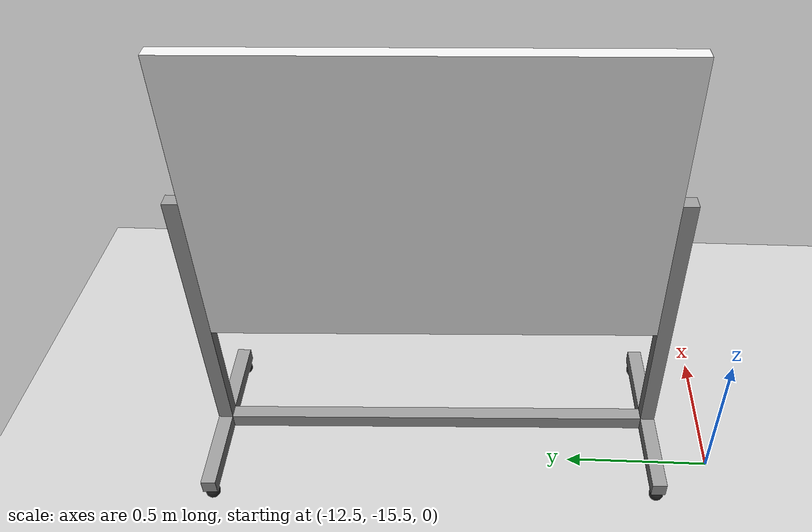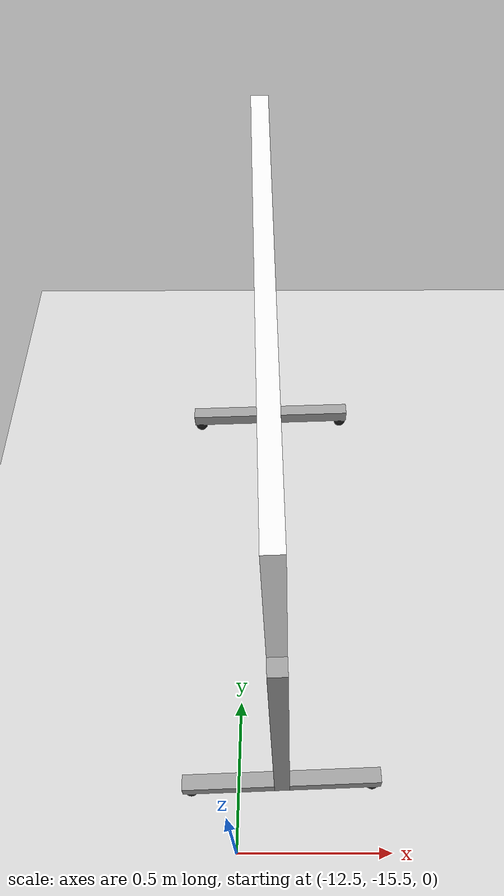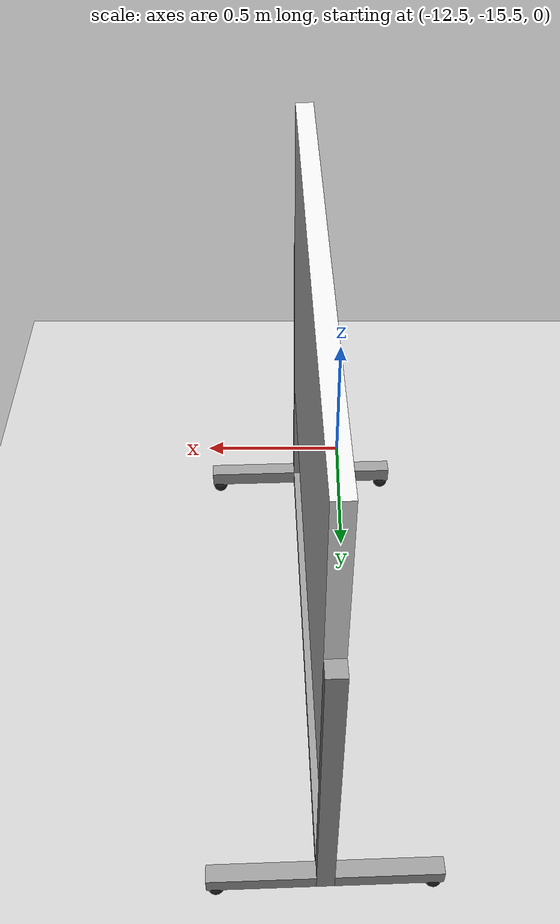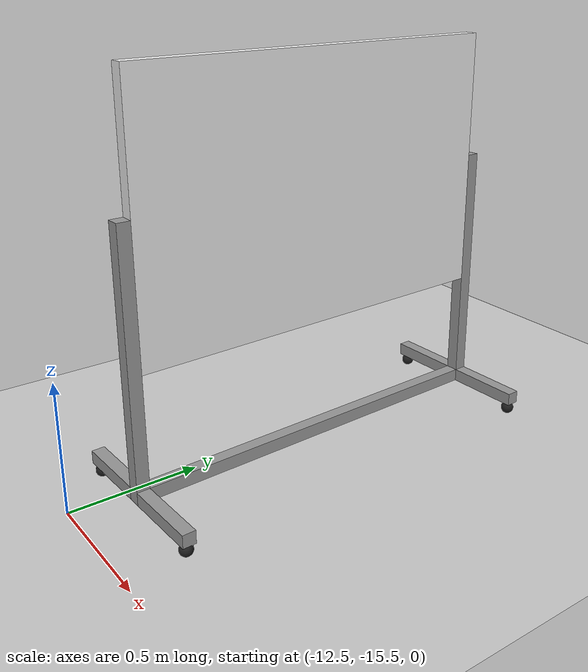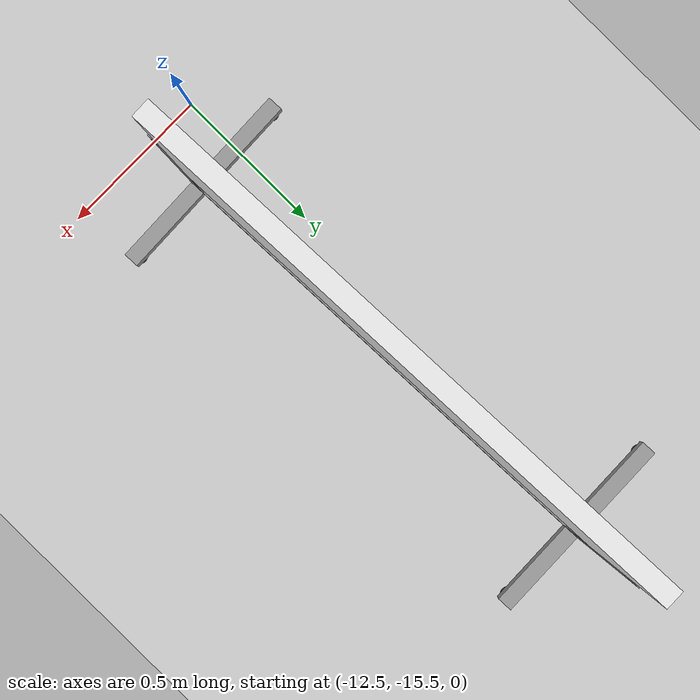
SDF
<sdf version="1.6">
 <world name="default">
  <model name="ground_plane">
   <static>1</static>
   <link name="link">
    <collision name="collision">
     <geometry><plane><normal>0 0 1</normal><size>100 100</size></plane></geometry>
     <surface><friction><ode><mu>100</mu><mu2>50</mu2></ode></friction></surface>
    </collision>
    <visual name="visual">
     <cast_shadows>0</cast_shadows>
     <geometry><plane><normal>0 0 1</normal><size>100 100</size></plane></geometry>
     <material>
      <script><uri>file://media/materials/scripts/gazebo.material</uri><name>Gazebo/Grey</name></script>
     </material>
    </visual>
   </link>
  </model>
  <model name="whiteboard_clone_clone">
   <link name="link_0">
    <pose>0 0 1.09583 0 -0 0</pose>
    <inertial>
     <mass>1</mass>
     <inertia>
      <ixx>0.166667</ixx>
      <ixy>0</ixy>
      <ixz>0</ixz>
      <iyy>0.166667</iyy>
      <iyz>0</iyz>
      <izz>0.166667</izz>
     </inertia>
    </inertial>
    <visual name="visual">
     <geometry><box><size>0.05 1.5 1</size></box></geometry>
     <material>
      <lighting>1</lighting>
      <script><uri>file://media/materials/scripts/gazebo.material</uri><name>Gazebo/White</name></script>
      <shader type="vertex"><normal_map>__default__</normal_map></shader>
     </material>
    </visual>
    <collision name="collision">
     <geometry><box><size>0.05 1.5 1</size></box></geometry>
     <surface>
      <friction>
       <ode><mu>1</mu><mu2>1</mu2><fdir1>0 0 0</fdir1><slip1>0</slip1><slip2>0</slip2></ode>
       <torsional>
        <coefficient>1</coefficient>
        <patch_radius>0</patch_radius>
        <surface_radius>0</surface_radius>
        <use_patch_radius>1</use_patch_radius>
        <ode><slip>0</slip></ode>
       </torsional>
      </friction>
      <bounce><restitution_coefficient>0</restitution_coefficient><threshold>1e+06</threshold></bounce>
      <contact>
       <collide_without_contact>0</collide_without_contact>
       <collide_without_contact_bitmask>1</collide_without_contact_bitmask>
       <collide_bitmask>1</collide_bitmask>
       <ode>
        <soft_cfm>0</soft_cfm>
        <soft_erp>0.2</soft_erp>
        <kp>1e+13</kp>
        <kd>1</kd>
        <max_vel>0.01</max_vel>
        <min_depth>0</min_depth>
       </ode>
       <bullet>
        <split_impulse>1</split_impulse>
        <split_impulse_penetration_threshold>-0.01</split_impulse_penetration_threshold>
        <soft_cfm>0</soft_cfm>
        <soft_erp>0.2</soft_erp>
        <kp>1e+13</kp>
        <kd>1</kd>
       </bullet>
      </contact>
     </surface>
    </collision>
   </link>
   <link name="link_1">
    <pose>0 0 0.145833 0 -0 0</pose>
    <inertial>
     <mass>1</mass>
     <inertia>
      <ixx>0.166667</ixx>
      <ixy>0</ixy>
      <ixz>0</ixz>
      <iyy>0.166667</iyy>
      <iyz>0</iyz>
      <izz>0.166667</izz>
     </inertia>
    </inertial>
    <visual name="visual">
     <geometry><box><size>0.05 1.5 0.05</size></box></geometry>
     <material>
      <lighting>1</lighting>
      <script><uri>file://media/materials/scripts/gazebo.material</uri><name>Gazebo/Grey</name></script>
      <ambient>0.3 0.3 0.3 1</ambient>
      <diffuse>0.7 0.7 0.7 1</diffuse>
      <specular>0.01 0.01 0.01 1</specular>
      <emissive>0 0 0 1</emissive>
      <shader type="vertex"><normal_map>__default__</normal_map></shader>
     </material>
    </visual>
    <collision name="collision">
     <geometry><box><size>0.05 1.5 0.05</size></box></geometry>
     <surface>
      <friction>
       <ode><mu>1</mu><mu2>1</mu2><fdir1>0 0 0</fdir1><slip1>0</slip1><slip2>0</slip2></ode>
       <torsional>
        <coefficient>1</coefficient>
        <patch_radius>0</patch_radius>
        <surface_radius>0</surface_radius>
        <use_patch_radius>1</use_patch_radius>
        <ode><slip>0</slip></ode>
       </torsional>
      </friction>
      <bounce><restitution_coefficient>0</restitution_coefficient><threshold>1e+06</threshold></bounce>
      <contact>
       <collide_without_contact>0</collide_without_contact>
       <collide_without_contact_bitmask>1</collide_without_contact_bitmask>
       <collide_bitmask>1</collide_bitmask>
       <ode>
        <soft_cfm>0</soft_cfm>
        <soft_erp>0.2</soft_erp>
        <kp>1e+13</kp>
        <kd>1</kd>
        <max_vel>0.01</max_vel>
        <min_depth>0</min_depth>
       </ode>
       <bullet>
        <split_impulse>1</split_impulse>
        <split_impulse_penetration_threshold>-0.01</split_impulse_penetration_threshold>
        <soft_cfm>0</soft_cfm>
        <soft_erp>0.2</soft_erp>
        <kp>1e+13</kp>
        <kd>1</kd>
       </bullet>
      </contact>
     </surface>
    </collision>
   </link>
   <link name="link_2">
    <pose>-0.175 -0.775 0.145833 0 -0 0</pose>
    <inertial>
     <mass>1</mass>
     <inertia>
      <ixx>0.166667</ixx>
      <ixy>0</ixy>
      <ixz>0</ixz>
      <iyy>0.166667</iyy>
      <iyz>0</iyz>
      <izz>0.166667</izz>
     </inertia>
    </inertial>
    <visual name="visual">
     <geometry><box><size>0.3 0.05 0.05</size></box></geometry>
     <material>
      <lighting>1</lighting>
      <script><uri>file://media/materials/scripts/gazebo.material</uri><name>Gazebo/Grey</name></script>
      <ambient>0.3 0.3 0.3 1</ambient>
      <diffuse>0.7 0.7 0.7 1</diffuse>
      <specular>0.01 0.01 0.01 1</specular>
      <emissive>0 0 0 1</emissive>
      <shader type="vertex"><normal_map>__default__</normal_map></shader>
     </material>
    </visual>
    <collision name="collision">
     <geometry><box><size>0.3 0.05 0.05</size></box></geometry>
     <surface>
      <friction>
       <ode><mu>1</mu><mu2>1</mu2><fdir1>0 0 0</fdir1><slip1>0</slip1><slip2>0</slip2></ode>
       <torsional>
        <coefficient>1</coefficient>
        <patch_radius>0</patch_radius>
        <surface_radius>0</surface_radius>
        <use_patch_radius>1</use_patch_radius>
        <ode><slip>0</slip></ode>
       </torsional>
      </friction>
      <bounce><restitution_coefficient>0</restitution_coefficient><threshold>1e+06</threshold></bounce>
      <contact>
       <collide_without_contact>0</collide_without_contact>
       <collide_without_contact_bitmask>1</collide_without_contact_bitmask>
       <collide_bitmask>1</collide_bitmask>
       <ode>
        <soft_cfm>0</soft_cfm>
        <soft_erp>0.2</soft_erp>
        <kp>1e+13</kp>
        <kd>1</kd>
        <max_vel>0.01</max_vel>
        <min_depth>0</min_depth>
       </ode>
       <bullet>
        <split_impulse>1</split_impulse>
        <split_impulse_penetration_threshold>-0.01</split_impulse_penetration_threshold>
        <soft_cfm>0</soft_cfm>
        <soft_erp>0.2</soft_erp>
        <kp>1e+13</kp>
        <kd>1</kd>
       </bullet>
      </contact>
     </surface>
    </collision>
   </link>
   <link name="link_2_clone">
    <pose>0.175 0.775 0.145833 0 -0 0</pose>
    <inertial>
     <mass>1</mass>
     <inertia>
      <ixx>0.166667</ixx>
      <ixy>0</ixy>
      <ixz>0</ixz>
      <iyy>0.166667</iyy>
      <iyz>0</iyz>
      <izz>0.166667</izz>
     </inertia>
    </inertial>
    <visual name="visual">
     <geometry><box><size>0.3 0.05 0.05</size></box></geometry>
     <material>
      <lighting>1</lighting>
      <script><uri>file://media/materials/scripts/gazebo.material</uri><name>Gazebo/Grey</name></script>
      <ambient>0.3 0.3 0.3 1</ambient>
      <diffuse>0.7 0.7 0.7 1</diffuse>
      <specular>0.01 0.01 0.01 1</specular>
      <emissive>0 0 0 1</emissive>
      <shader type="vertex"><normal_map>__default__</normal_map></shader>
     </material>
    </visual>
    <collision name="collision">
     <geometry><box><size>0.3 0.05 0.05</size></box></geometry>
     <surface>
      <friction>
       <ode><mu>1</mu><mu2>1</mu2><fdir1>0 0 0</fdir1><slip1>0</slip1><slip2>0</slip2></ode>
       <torsional>
        <coefficient>1</coefficient>
        <patch_radius>0</patch_radius>
        <surface_radius>0</surface_radius>
        <use_patch_radius>1</use_patch_radius>
        <ode><slip>0</slip></ode>
       </torsional>
      </friction>
      <bounce><restitution_coefficient>0</restitution_coefficient><threshold>1e+06</threshold></bounce>
      <contact>
       <collide_without_contact>0</collide_without_contact>
       <collide_without_contact_bitmask>1</collide_without_contact_bitmask>
       <collide_bitmask>1</collide_bitmask>
       <ode>
        <soft_cfm>0</soft_cfm>
        <soft_erp>0.2</soft_erp>
        <kp>1e+13</kp>
        <kd>1</kd>
        <max_vel>0.01</max_vel>
        <min_depth>0</min_depth>
       </ode>
       <bullet>
        <split_impulse>1</split_impulse>
        <split_impulse_penetration_threshold>-0.01</split_impulse_penetration_threshold>
        <soft_cfm>0</soft_cfm>
        <soft_erp>0.2</soft_erp>
        <kp>1e+13</kp>
        <kd>1</kd>
       </bullet>
      </contact>
     </surface>
    </collision>
   </link>
   <link name="link_2_clone_clone">
    <pose>0.175 -0.775 0.145833 0 -0 0</pose>
    <inertial>
     <mass>1</mass>
     <inertia>
      <ixx>0.166667</ixx>
      <ixy>0</ixy>
      <ixz>0</ixz>
      <iyy>0.166667</iyy>
      <iyz>0</iyz>
      <izz>0.166667</izz>
     </inertia>
    </inertial>
    <visual name="visual">
     <geometry><box><size>0.3 0.05 0.05</size></box></geometry>
     <material>
      <lighting>1</lighting>
      <script><uri>file://media/materials/scripts/gazebo.material</uri><name>Gazebo/Grey</name></script>
      <ambient>0.3 0.3 0.3 1</ambient>
      <diffuse>0.7 0.7 0.7 1</diffuse>
      <specular>0.01 0.01 0.01 1</specular>
      <emissive>0 0 0 1</emissive>
      <shader type="vertex"><normal_map>__default__</normal_map></shader>
     </material>
    </visual>
    <collision name="collision">
     <geometry><box><size>0.3 0.05 0.05</size></box></geometry>
     <surface>
      <friction>
       <ode><mu>1</mu><mu2>1</mu2><fdir1>0 0 0</fdir1><slip1>0</slip1><slip2>0</slip2></ode>
       <torsional>
        <coefficient>1</coefficient>
        <patch_radius>0</patch_radius>
        <surface_radius>0</surface_radius>
        <use_patch_radius>1</use_patch_radius>
        <ode><slip>0</slip></ode>
       </torsional>
      </friction>
      <bounce><restitution_coefficient>0</restitution_coefficient><threshold>1e+06</threshold></bounce>
      <contact>
       <collide_without_contact>0</collide_without_contact>
       <collide_without_contact_bitmask>1</collide_without_contact_bitmask>
       <collide_bitmask>1</collide_bitmask>
       <ode>
        <soft_cfm>0</soft_cfm>
        <soft_erp>0.2</soft_erp>
        <kp>1e+13</kp>
        <kd>1</kd>
        <max_vel>0.01</max_vel>
        <min_depth>0</min_depth>
       </ode>
       <bullet>
        <split_impulse>1</split_impulse>
        <split_impulse_penetration_threshold>-0.01</split_impulse_penetration_threshold>
        <soft_cfm>0</soft_cfm>
        <soft_erp>0.2</soft_erp>
        <kp>1e+13</kp>
        <kd>1</kd>
       </bullet>
      </contact>
     </surface>
    </collision>
   </link>
   <link name="link_2_clone_clone_clone">
    <pose>-0.175 0.775 0.145833 0 -0 0</pose>
    <inertial>
     <mass>1</mass>
     <inertia>
      <ixx>0.166667</ixx>
      <ixy>0</ixy>
      <ixz>0</ixz>
      <iyy>0.166667</iyy>
      <iyz>0</iyz>
      <izz>0.166667</izz>
     </inertia>
    </inertial>
    <visual name="visual">
     <geometry><box><size>0.3 0.05 0.05</size></box></geometry>
     <material>
      <lighting>1</lighting>
      <script><uri>file://media/materials/scripts/gazebo.material</uri><name>Gazebo/Grey</name></script>
      <ambient>0.3 0.3 0.3 1</ambient>
      <diffuse>0.7 0.7 0.7 1</diffuse>
      <specular>0.01 0.01 0.01 1</specular>
      <emissive>0 0 0 1</emissive>
      <shader type="vertex"><normal_map>__default__</normal_map></shader>
     </material>
    </visual>
    <collision name="collision">
     <geometry><box><size>0.3 0.05 0.05</size></box></geometry>
     <surface>
      <friction>
       <ode><mu>1</mu><mu2>1</mu2><fdir1>0 0 0</fdir1><slip1>0</slip1><slip2>0</slip2></ode>
       <torsional>
        <coefficient>1</coefficient>
        <patch_radius>0</patch_radius>
        <surface_radius>0</surface_radius>
        <use_patch_radius>1</use_patch_radius>
        <ode><slip>0</slip></ode>
       </torsional>
      </friction>
      <bounce><restitution_coefficient>0</restitution_coefficient><threshold>1e+06</threshold></bounce>
      <contact>
       <collide_without_contact>0</collide_without_contact>
       <collide_without_contact_bitmask>1</collide_without_contact_bitmask>
       <collide_bitmask>1</collide_bitmask>
       <ode>
        <soft_cfm>0</soft_cfm>
        <soft_erp>0.2</soft_erp>
        <kp>1e+13</kp>
        <kd>1</kd>
        <max_vel>0.01</max_vel>
        <min_depth>0</min_depth>
       </ode>
       <bullet>
        <split_impulse>1</split_impulse>
        <split_impulse_penetration_threshold>-0.01</split_impulse_penetration_threshold>
        <soft_cfm>0</soft_cfm>
        <soft_erp>0.2</soft_erp>
        <kp>1e+13</kp>
        <kd>1</kd>
       </bullet>
      </contact>
     </surface>
    </collision>
   </link>
   <link name="link_3">
    <pose>0 -0.775 0.620833 0 -0 0</pose>
    <inertial>
     <mass>1</mass>
     <inertia>
      <ixx>0.166667</ixx>
      <ixy>0</ixy>
      <ixz>0</ixz>
      <iyy>0.166667</iyy>
      <iyz>0</iyz>
      <izz>0.166667</izz>
     </inertia>
    </inertial>
    <visual name="visual">
     <geometry><box><size>0.05 0.05 1</size></box></geometry>
     <material>
      <lighting>1</lighting>
      <script><uri>file://media/materials/scripts/gazebo.material</uri><name>Gazebo/Grey</name></script>
      <ambient>0.3 0.3 0.3 1</ambient>
      <diffuse>0.7 0.7 0.7 1</diffuse>
      <specular>0.01 0.01 0.01 1</specular>
      <emissive>0 0 0 1</emissive>
      <shader type="vertex"><normal_map>__default__</normal_map></shader>
     </material>
    </visual>
    <collision name="collision">
     <geometry><box><size>0.05 0.05 1</size></box></geometry>
     <surface>
      <friction>
       <ode><mu>1</mu><mu2>1</mu2><fdir1>0 0 0</fdir1><slip1>0</slip1><slip2>0</slip2></ode>
       <torsional>
        <coefficient>1</coefficient>
        <patch_radius>0</patch_radius>
        <surface_radius>0</surface_radius>
        <use_patch_radius>1</use_patch_radius>
        <ode><slip>0</slip></ode>
       </torsional>
      </friction>
      <bounce><restitution_coefficient>0</restitution_coefficient><threshold>1e+06</threshold></bounce>
      <contact>
       <collide_without_contact>0</collide_without_contact>
       <collide_without_contact_bitmask>1</collide_without_contact_bitmask>
       <collide_bitmask>1</collide_bitmask>
       <ode>
        <soft_cfm>0</soft_cfm>
        <soft_erp>0.2</soft_erp>
        <kp>1e+13</kp>
        <kd>1</kd>
        <max_vel>0.01</max_vel>
        <min_depth>0</min_depth>
       </ode>
       <bullet>
        <split_impulse>1</split_impulse>
        <split_impulse_penetration_threshold>-0.01</split_impulse_penetration_threshold>
        <soft_cfm>0</soft_cfm>
        <soft_erp>0.2</soft_erp>
        <kp>1e+13</kp>
        <kd>1</kd>
       </bullet>
      </contact>
     </surface>
    </collision>
   </link>
   <link name="link_3_clone">
    <pose>0 0.775 0.620833 0 -0 0</pose>
    <inertial>
     <mass>1</mass>
     <inertia>
      <ixx>0.166667</ixx>
      <ixy>0</ixy>
      <ixz>0</ixz>
      <iyy>0.166667</iyy>
      <iyz>0</iyz>
      <izz>0.166667</izz>
     </inertia>
    </inertial>
    <visual name="visual">
     <geometry><box><size>0.05 0.05 1</size></box></geometry>
     <material>
      <lighting>1</lighting>
      <script><uri>file://media/materials/scripts/gazebo.material</uri><name>Gazebo/Grey</name></script>
      <ambient>0.3 0.3 0.3 1</ambient>
      <diffuse>0.7 0.7 0.7 1</diffuse>
      <specular>0.01 0.01 0.01 1</specular>
      <emissive>0 0 0 1</emissive>
      <shader type="vertex"><normal_map>__default__</normal_map></shader>
     </material>
    </visual>
    <collision name="collision">
     <geometry><box><size>0.05 0.05 1</size></box></geometry>
     <surface>
      <friction>
       <ode><mu>1</mu><mu2>1</mu2><fdir1>0 0 0</fdir1><slip1>0</slip1><slip2>0</slip2></ode>
       <torsional>
        <coefficient>1</coefficient>
        <patch_radius>0</patch_radius>
        <surface_radius>0</surface_radius>
        <use_patch_radius>1</use_patch_radius>
        <ode><slip>0</slip></ode>
       </torsional>
      </friction>
      <bounce><restitution_coefficient>0</restitution_coefficient><threshold>1e+06</threshold></bounce>
      <contact>
       <collide_without_contact>0</collide_without_contact>
       <collide_without_contact_bitmask>1</collide_without_contact_bitmask>
       <collide_bitmask>1</collide_bitmask>
       <ode>
        <soft_cfm>0</soft_cfm>
        <soft_erp>0.2</soft_erp>
        <kp>1e+13</kp>
        <kd>1</kd>
        <max_vel>0.01</max_vel>
        <min_depth>0</min_depth>
       </ode>
       <bullet>
        <split_impulse>1</split_impulse>
        <split_impulse_penetration_threshold>-0.01</split_impulse_penetration_threshold>
        <soft_cfm>0</soft_cfm>
        <soft_erp>0.2</soft_erp>
        <kp>1e+13</kp>
        <kd>1</kd>
       </bullet>
      </contact>
     </surface>
    </collision>
   </link>
   <link name="link_4">
    <pose>-0.3 -0.775 0.095833 0 -0 0</pose>
    <inertial>
     <mass>1</mass>
     <inertia><ixx>0.1</ixx><ixy>0</ixy><ixz>0</ixz><iyy>0.1</iyy><iyz>0</iyz><izz>0.1</izz></inertia>
    </inertial>
    <visual name="visual">
     <geometry><sphere><radius>0.025</radius></sphere></geometry>
     <material>
      <lighting>1</lighting>
      <script><uri>file://media/materials/scripts/gazebo.material</uri><name>Gazebo/Black</name></script>
      <shader type="vertex"><normal_map>__default__</normal_map></shader>
     </material>
    </visual>
    <collision name="collision">
     <geometry><sphere><radius>0.025</radius></sphere></geometry>
     <surface>
      <friction>
       <ode><mu>1</mu><mu2>1</mu2><fdir1>0 0 0</fdir1><slip1>0</slip1><slip2>0</slip2></ode>
       <torsional>
        <coefficient>1</coefficient>
        <patch_radius>0</patch_radius>
        <surface_radius>0</surface_radius>
        <use_patch_radius>1</use_patch_radius>
        <ode><slip>0</slip></ode>
       </torsional>
      </friction>
      <bounce><restitution_coefficient>0</restitution_coefficient><threshold>1e+06</threshold></bounce>
      <contact>
       <collide_without_contact>0</collide_without_contact>
       <collide_without_contact_bitmask>1</collide_without_contact_bitmask>
       <collide_bitmask>1</collide_bitmask>
       <ode>
        <soft_cfm>0</soft_cfm>
        <soft_erp>0.2</soft_erp>
        <kp>1e+13</kp>
        <kd>1</kd>
        <max_vel>0.01</max_vel>
        <min_depth>0</min_depth>
       </ode>
       <bullet>
        <split_impulse>1</split_impulse>
        <split_impulse_penetration_threshold>-0.01</split_impulse_penetration_threshold>
        <soft_cfm>0</soft_cfm>
        <soft_erp>0.2</soft_erp>
        <kp>1e+13</kp>
        <kd>1</kd>
       </bullet>
      </contact>
     </surface>
    </collision>
   </link>
   <link name="link_4_clone">
    <pose>0.3 0.775 0.095833 0 -0 0</pose>
    <inertial>
     <mass>1</mass>
     <inertia><ixx>0.1</ixx><ixy>0</ixy><ixz>0</ixz><iyy>0.1</iyy><iyz>0</iyz><izz>0.1</izz></inertia>
    </inertial>
    <visual name="visual">
     <geometry><sphere><radius>0.025</radius></sphere></geometry>
     <material>
      <lighting>1</lighting>
      <script><uri>file://media/materials/scripts/gazebo.material</uri><name>Gazebo/Black</name></script>
      <shader type="vertex"><normal_map>__default__</normal_map></shader>
     </material>
    </visual>
    <collision name="collision">
     <geometry><sphere><radius>0.025</radius></sphere></geometry>
     <surface>
      <friction>
       <ode><mu>1</mu><mu2>1</mu2><fdir1>0 0 0</fdir1><slip1>0</slip1><slip2>0</slip2></ode>
       <torsional>
        <coefficient>1</coefficient>
        <patch_radius>0</patch_radius>
        <surface_radius>0</surface_radius>
        <use_patch_radius>1</use_patch_radius>
        <ode><slip>0</slip></ode>
       </torsional>
      </friction>
      <bounce><restitution_coefficient>0</restitution_coefficient><threshold>1e+06</threshold></bounce>
      <contact>
       <collide_without_contact>0</collide_without_contact>
       <collide_without_contact_bitmask>1</collide_without_contact_bitmask>
       <collide_bitmask>1</collide_bitmask>
       <ode>
        <soft_cfm>0</soft_cfm>
        <soft_erp>0.2</soft_erp>
        <kp>1e+13</kp>
        <kd>1</kd>
        <max_vel>0.01</max_vel>
        <min_depth>0</min_depth>
       </ode>
       <bullet>
        <split_impulse>1</split_impulse>
        <split_impulse_penetration_threshold>-0.01</split_impulse_penetration_threshold>
        <soft_cfm>0</soft_cfm>
        <soft_erp>0.2</soft_erp>
        <kp>1e+13</kp>
        <kd>1</kd>
       </bullet>
      </contact>
     </surface>
    </collision>
   </link>
   <link name="link_4_clone_clone">
    <pose>-0.3 0.775 0.095833 0 -0 0</pose>
    <inertial>
     <mass>1</mass>
     <inertia><ixx>0.1</ixx><ixy>0</ixy><ixz>0</ixz><iyy>0.1</iyy><iyz>0</iyz><izz>0.1</izz></inertia>
    </inertial>
    <visual name="visual">
     <geometry><sphere><radius>0.025</radius></sphere></geometry>
     <material>
      <lighting>1</lighting>
      <script><uri>file://media/materials/scripts/gazebo.material</uri><name>Gazebo/Black</name></script>
      <shader type="vertex"><normal_map>__default__</normal_map></shader>
     </material>
    </visual>
    <collision name="collision">
     <geometry><sphere><radius>0.025</radius></sphere></geometry>
     <surface>
      <friction>
       <ode><mu>1</mu><mu2>1</mu2><fdir1>0 0 0</fdir1><slip1>0</slip1><slip2>0</slip2></ode>
       <torsional>
        <coefficient>1</coefficient>
        <patch_radius>0</patch_radius>
        <surface_radius>0</surface_radius>
        <use_patch_radius>1</use_patch_radius>
        <ode><slip>0</slip></ode>
       </torsional>
      </friction>
      <bounce><restitution_coefficient>0</restitution_coefficient><threshold>1e+06</threshold></bounce>
      <contact>
       <collide_without_contact>0</collide_without_contact>
       <collide_without_contact_bitmask>1</collide_without_contact_bitmask>
       <collide_bitmask>1</collide_bitmask>
       <ode>
        <soft_cfm>0</soft_cfm>
        <soft_erp>0.2</soft_erp>
        <kp>1e+13</kp>
        <kd>1</kd>
        <max_vel>0.01</max_vel>
        <min_depth>0</min_depth>
       </ode>
       <bullet>
        <split_impulse>1</split_impulse>
        <split_impulse_penetration_threshold>-0.01</split_impulse_penetration_threshold>
        <soft_cfm>0</soft_cfm>
        <soft_erp>0.2</soft_erp>
        <kp>1e+13</kp>
        <kd>1</kd>
       </bullet>
      </contact>
     </surface>
    </collision>
   </link>
   <link name="link_4_clone_clone_clone">
    <pose>0.3 -0.775 0.095833 0 -0 0</pose>
    <inertial>
     <mass>1</mass>
     <inertia><ixx>0.1</ixx><ixy>0</ixy><ixz>0</ixz><iyy>0.1</iyy><iyz>0</iyz><izz>0.1</izz></inertia>
    </inertial>
    <visual name="visual">
     <geometry><sphere><radius>0.025</radius></sphere></geometry>
     <material>
      <lighting>1</lighting>
      <script><uri>file://media/materials/scripts/gazebo.material</uri><name>Gazebo/Black</name></script>
      <shader type="vertex"><normal_map>__default__</normal_map></shader>
     </material>
    </visual>
    <collision name="collision">
     <geometry><sphere><radius>0.025</radius></sphere></geometry>
     <surface>
      <friction>
       <ode><mu>1</mu><mu2>1</mu2><fdir1>0 0 0</fdir1><slip1>0</slip1><slip2>0</slip2></ode>
       <torsional>
        <coefficient>1</coefficient>
        <patch_radius>0</patch_radius>
        <surface_radius>0</surface_radius>
        <use_patch_radius>1</use_patch_radius>
        <ode><slip>0</slip></ode>
       </torsional>
      </friction>
      <bounce><restitution_coefficient>0</restitution_coefficient><threshold>1e+06</threshold></bounce>
      <contact>
       <collide_without_contact>0</collide_without_contact>
       <collide_without_contact_bitmask>1</collide_without_contact_bitmask>
       <collide_bitmask>1</collide_bitmask>
       <ode>
        <soft_cfm>0</soft_cfm>
        <soft_erp>0.2</soft_erp>
        <kp>1e+13</kp>
        <kd>1</kd>
        <max_vel>0.01</max_vel>
        <min_depth>0</min_depth>
       </ode>
       <bullet>
        <split_impulse>1</split_impulse>
        <split_impulse_penetration_threshold>-0.01</split_impulse_penetration_threshold>
        <soft_cfm>0</soft_cfm>
        <soft_erp>0.2</soft_erp>
        <kp>1e+13</kp>
        <kd>1</kd>
       </bullet>
      </contact>
     </surface>
    </collision>
   </link>
   <joint name="link_1_JOINT_0" type="fixed">
    <parent>link_1</parent>
    <child>link_3</child>
    <physics>
     <ode><limit><cfm>0</cfm><erp>0.2</erp></limit><suspension><cfm>0</cfm><erp>0.2</erp></suspension></ode>
    </physics>
   </joint>
   <joint name="link_1_JOINT_3" type="fixed">
    <parent>link_1</parent>
    <child>link_3_clone</child>
    <physics>
     <ode><limit><cfm>0</cfm><erp>0.2</erp></limit><suspension><cfm>0</cfm><erp>0.2</erp></suspension></ode>
    </physics>
   </joint>
   <joint name="link_2_JOINT_12" type="ball">
    <parent>link_2</parent>
    <child>link_4</child>
    <physics>
     <ode><limit><cfm>0</cfm><erp>0.2</erp></limit><suspension><cfm>0</cfm><erp>0.2</erp></suspension></ode>
    </physics>
   </joint>
   <joint name="link_2_clone_JOINT_10" type="ball">
    <parent>link_2_clone</parent>
    <child>link_4_clone</child>
    <physics>
     <ode><limit><cfm>0</cfm><erp>0.2</erp></limit><suspension><cfm>0</cfm><erp>0.2</erp></suspension></ode>
    </physics>
   </joint>
   <joint name="link_2_clone_clone_JOINT_9" type="ball">
    <parent>link_2_clone_clone</parent>
    <child>link_4_clone_clone_clone</child>
    <physics>
     <ode><limit><cfm>0</cfm><erp>0.2</erp></limit><suspension><cfm>0</cfm><erp>0.2</erp></suspension></ode>
    </physics>
   </joint>
   <joint name="link_2_clone_clone_clone_JOINT_11" type="ball">
    <parent>link_2_clone_clone_clone</parent>
    <child>link_4_clone_clone</child>
    <physics>
     <ode><limit><cfm>0</cfm><erp>0.2</erp></limit><suspension><cfm>0</cfm><erp>0.2</erp></suspension></ode>
    </physics>
   </joint>
   <joint name="link_3_JOINT_1" type="fixed">
    <parent>link_3</parent>
    <child>link_2_clone_clone</child>
    <physics>
     <ode><limit><cfm>0</cfm><erp>0.2</erp></limit><suspension><cfm>0</cfm><erp>0.2</erp></suspension></ode>
    </physics>
   </joint>
   <joint name="link_3_JOINT_2" type="fixed">
    <parent>link_3</parent>
    <child>link_2</child>
    <physics>
     <ode><limit><cfm>0</cfm><erp>0.2</erp></limit><suspension><cfm>0</cfm><erp>0.2</erp></suspension></ode>
    </physics>
   </joint>
   <joint name="link_3_JOINT_6" type="fixed">
    <parent>link_3</parent>
    <child>link_0</child>
    <physics>
     <ode><limit><cfm>0</cfm><erp>0.2</erp></limit><suspension><cfm>0</cfm><erp>0.2</erp></suspension></ode>
    </physics>
   </joint>
   <joint name="link_3_clone_JOINT_4" type="fixed">
    <parent>link_3_clone</parent>
    <child>link_2_clone</child>
    <physics>
     <ode><limit><cfm>0</cfm><erp>0.2</erp></limit><suspension><cfm>0</cfm><erp>0.2</erp></suspension></ode>
    </physics>
   </joint>
   <joint name="link_3_clone_JOINT_5" type="fixed">
    <parent>link_3_clone</parent>
    <child>link_2_clone_clone_clone</child>
    <physics>
     <ode><limit><cfm>0</cfm><erp>0.2</erp></limit><suspension><cfm>0</cfm><erp>0.2</erp></suspension></ode>
    </physics>
   </joint>
   <joint name="link_3_clone_JOINT_7" type="fixed">
    <parent>link_3_clone</parent>
    <child>link_0</child>
    <physics>
     <ode><limit><cfm>0</cfm><erp>0.2</erp></limit><suspension><cfm>0</cfm><erp>0.2</erp></suspension></ode>
    </physics>
   </joint>
   <static>0</static>
   <pose>-12.3828 -14.5149 -0.070835 -0 -6e-06 0.035601</pose>
  </model>
 </world>
</sdf>
